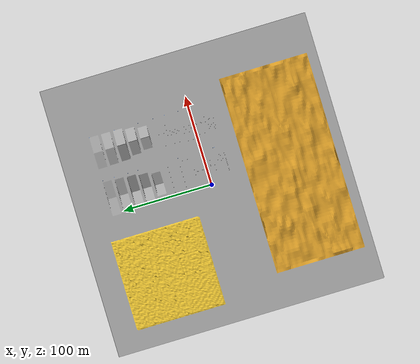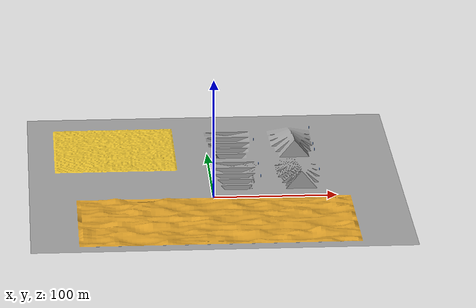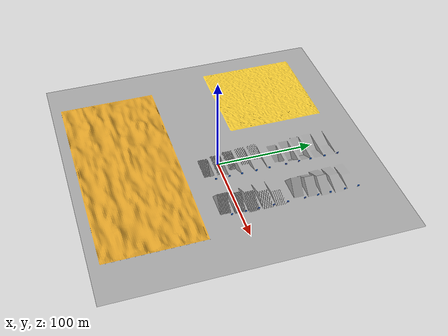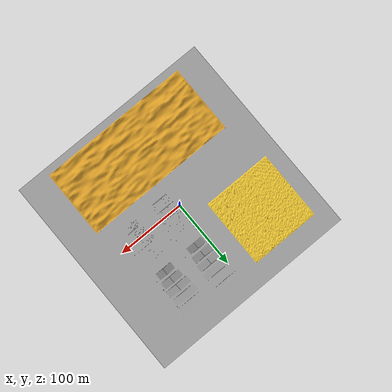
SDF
<?xml version="1.0" ?>
<sdf version="1.8">
  <world name="tile3">
    <!-- 1. PHYSICS ENGINE SETTINGS -->
    <physics name="1ms" type="ignored">
      <max_step_size>0.001</max_step_size>
      <real_time_factor>1.0</real_time_factor>
    </physics>

    <!-- 2. CRITICAL WORLD PLUGINS (The Brain) -->
    <plugin filename="gz-sim-physics-system" name="gz::sim::systems::Physics"/>
    <plugin filename="gz-sim-user-commands-system" name="gz::sim::systems::UserCommands"/>
    <plugin filename="gz-sim-scene-broadcaster-system" name="gz::sim::systems::SceneBroadcaster"/>
    <plugin filename="gz-sim-sensors-system" name="gz::sim::systems::Sensors">
      <render_engine>ogre2</render_engine>
    </plugin>

    <plugin filename="gz-sim-imu-system" name="gz::sim::systems::Imu"/>
    <plugin filename="gz-sim-navsat-system" name="gz::sim::systems::NavSat"/>

    <!-- ADD THIS BLOCK HERE -->
    <spherical_coordinates>
      <surface_model>EARTH_WGS84</surface_model>
      <world_frame_orientation>ENU</world_frame_orientation>
      <latitude_deg>36.61002559225</latitude_deg>
      <longitude_deg>127.28772570583</longitude_deg>
      <elevation>0.0</elevation>
      <heading_deg>0</heading_deg>
    </spherical_coordinates>

    <light name="sun" type="directional">
      <cast_shadows>true</cast_shadows>
      <pose>0 0 10 0 0 0</pose>
      <diffuse>1 1 1 1</diffuse>
      <specular>0.5 0.5 0.5 1</specular>
      <direction>-0.5 0.5 -1</direction>
    </light>

    <!-- 3. YOUR MAP MODEL -->
    <model name="my_mesh_map">
      <static>true</static>
      <link name="link">
        <collision name="collision">
          <geometry>
            <mesh>
              <uri>model://my_map/meshes/tile3/tile3.dae</uri>
              <scale>1 1 1</scale>
            </mesh>
          </geometry>
          <surface>
            <friction>
              <ode>
                <mu>1.0</mu>
                <mu2>1.0</mu2>
              </ode>
            </friction>
            <contact>
              <collide_bitmask>0xffff</collide_bitmask>
            </contact>
          </surface>
        </collision>
        <visual name="visual">
          <geometry>
            <mesh>
              <uri>model://my_map/meshes/tile3/tile3.dae</uri>
            </mesh>
          </geometry>
        </visual>
      </link>
    </model>
  </world>
</sdf>
